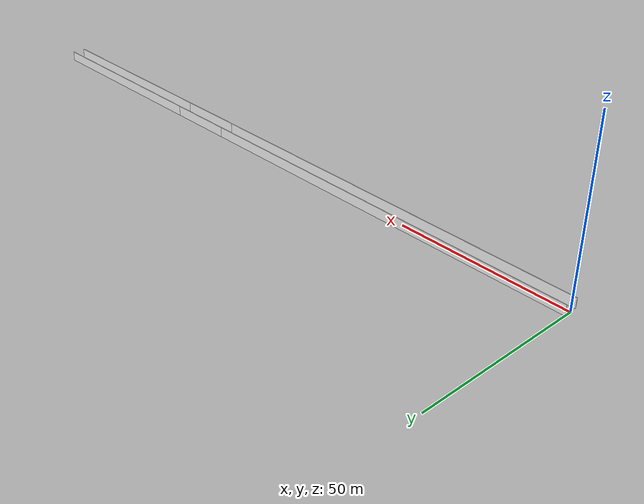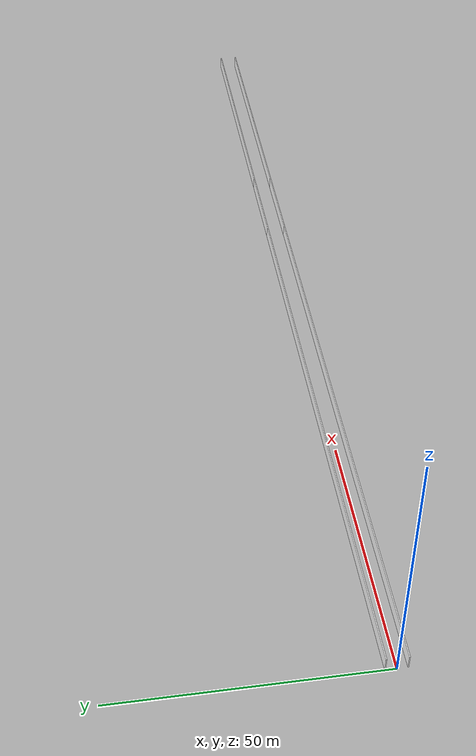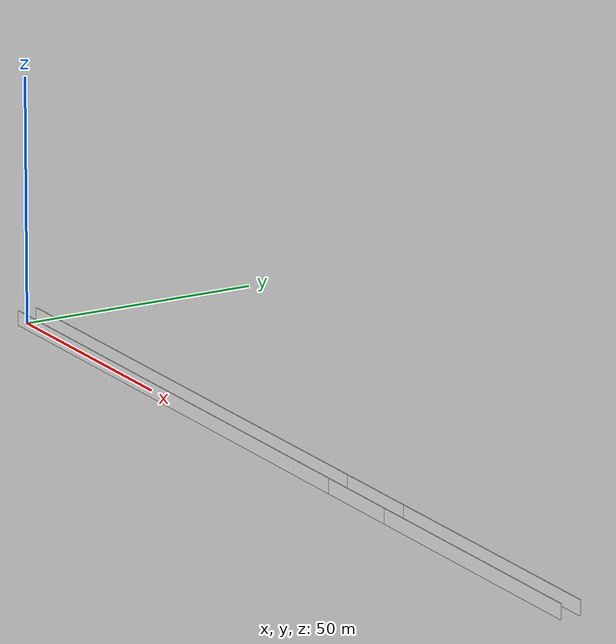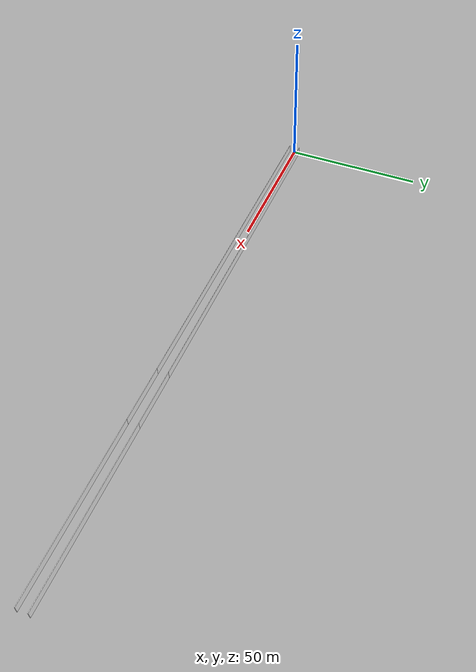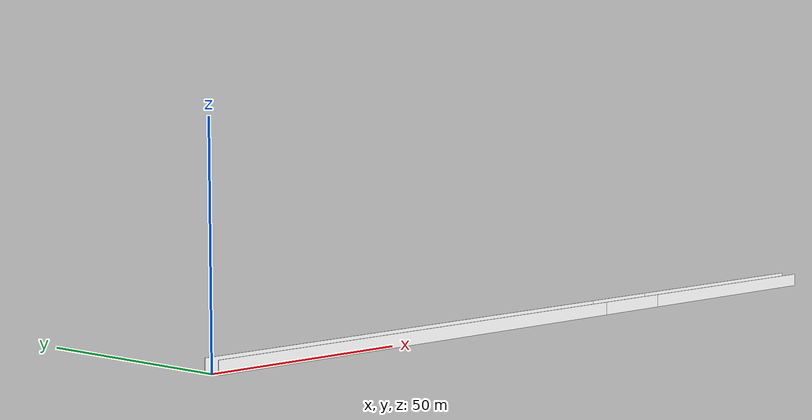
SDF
<?xml version="1.0" ?>
<sdf version="1.10">
  <model name="tunnel_walls_textured">
    <static>true</static>
    <link name="link">
      <collision name="c_left">
        <pose>100 2 1.5 0 0 0</pose>
        <geometry><box><size>200 0.2 3</size></box></geometry>
      </collision>
      <collision name="c_right">
        <pose>100 -2 1.5 0 0 0</pose>
        <geometry><box><size>200 0.2 3</size></box></geometry>
      </collision>
      <visual name="wl_000_120">
        <pose>60.0 2 1.5 0 0 0</pose>
        <geometry><box><size>120 0.2 3</size></box></geometry>
        <material>
          <diffuse>1 1 1 1</diffuse>
          <pbr><metal>
            <albedo_map>model://tunnel_walls_textured/materials/textures/feature_rich_wide.png</albedo_map>
            <roughness>0.9</roughness><metalness>0.0</metalness>
          </metal></pbr>
        </material>
      </visual>
      <visual name="wl_120_140">
        <pose>130.0 2 1.5 0 0 0</pose>
        <geometry><box><size>20 0.2 3</size></box></geometry>
        <material>
          <diffuse>1 1 1 1</diffuse>
          <pbr><metal>
            <albedo_map>model://tunnel_walls_textured/materials/textures/bare.png</albedo_map>
            <roughness>0.9</roughness><metalness>0.0</metalness>
          </metal></pbr>
        </material>
      </visual>
      <visual name="wl_140_200">
        <pose>170.0 2 1.5 0 0 0</pose>
        <geometry><box><size>60 0.2 3</size></box></geometry>
        <material>
          <diffuse>1 1 1 1</diffuse>
          <pbr><metal>
            <albedo_map>model://tunnel_walls_textured/materials/textures/feature_rich_wide.png</albedo_map>
            <roughness>0.9</roughness><metalness>0.0</metalness>
          </metal></pbr>
        </material>
      </visual>
      <visual name="wr_000_120">
        <pose>60.0 -2 1.5 0 0 0</pose>
        <geometry><box><size>120 0.2 3</size></box></geometry>
        <material>
          <diffuse>1 1 1 1</diffuse>
          <pbr><metal>
            <albedo_map>model://tunnel_walls_textured/materials/textures/feature_rich_wide.png</albedo_map>
            <roughness>0.9</roughness><metalness>0.0</metalness>
          </metal></pbr>
        </material>
      </visual>
      <visual name="wr_120_140">
        <pose>130.0 -2 1.5 0 0 0</pose>
        <geometry><box><size>20 0.2 3</size></box></geometry>
        <material>
          <diffuse>1 1 1 1</diffuse>
          <pbr><metal>
            <albedo_map>model://tunnel_walls_textured/materials/textures/bare.png</albedo_map>
            <roughness>0.9</roughness><metalness>0.0</metalness>
          </metal></pbr>
        </material>
      </visual>
      <visual name="wr_140_200">
        <pose>170.0 -2 1.5 0 0 0</pose>
        <geometry><box><size>60 0.2 3</size></box></geometry>
        <material>
          <diffuse>1 1 1 1</diffuse>
          <pbr><metal>
            <albedo_map>model://tunnel_walls_textured/materials/textures/feature_rich_wide.png</albedo_map>
            <roughness>0.9</roughness><metalness>0.0</metalness>
          </metal></pbr>
        </material>
      </visual>
    </link>
  </model>
</sdf>
